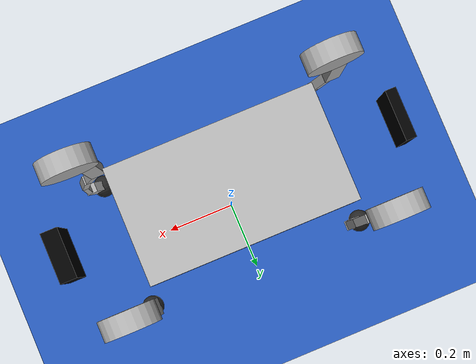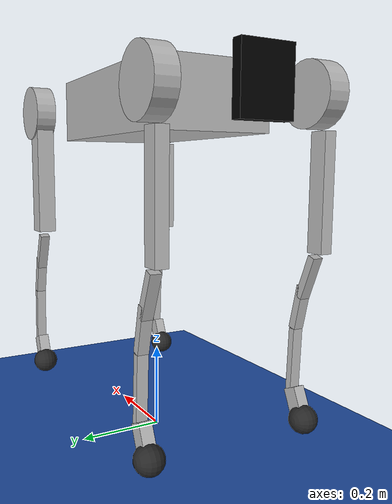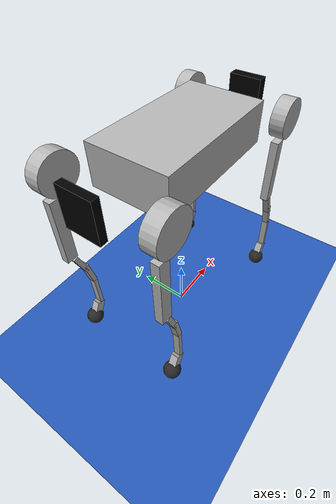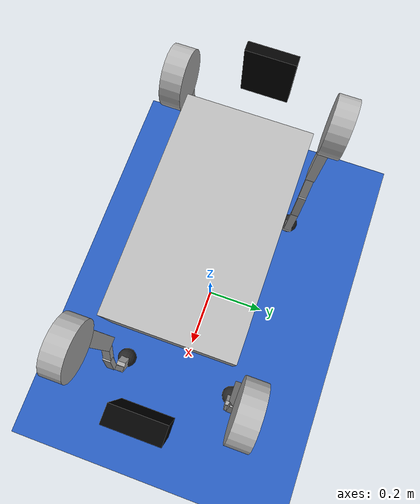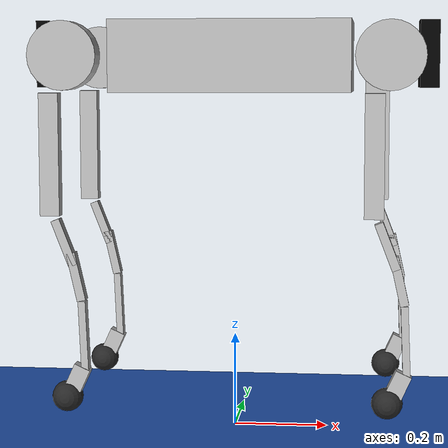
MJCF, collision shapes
<mujoco model="B2_Quadruped">
  <include file="../../object/common.xml"/>

  <size memory="1M"/>

  <visual>
    <headlight diffuse="0.6 0.6 0.6"  ambient="0.3 0.3 0.3" specular="0 0 0"/>
    <global azimuth="-90"/>
  </visual>

  <statistic extent="1" center="0 0 .3"/>

  <worldbody>
    <light pos="0 0 1.5" dir="0 0 -1" diffuse="0.5 0.5 0.5" specular="0.3 0.3 0.3"
      directional="true" castshadow="false"/>
    <geom name="floor" size="0 0 0.1" pos="0 0 0" type="plane" material="blue_grid" friction="1 0.02 0.001"/>
  </worldbody>

  <default>
    <default class="torque">
      <general gainprm="200" ctrllimited="true" ctrlrange="-1 1"/>
    </default>
  </default>

  <include file="B2_Motion.xml" />

  <actuator>
    <general class="torque" name="FR_hip" joint="FR_hip_joint"/>
    <general class="torque" name="FR_thigh" joint="FR_thigh_joint"/>
    <general class="torque" name="FR_calf" joint="FR_calf_joint"/>
    <general class="torque" name="FL_hip" joint="FL_hip_joint"/>
    <general class="torque" name="FL_thigh" joint="FL_thigh_joint"/>
    <general class="torque" name="FL_calf" joint="FL_calf_joint"/>
    <general class="torque" name="RR_hip" joint="RR_hip_joint"/>
    <general class="torque" name="RR_thigh" joint="RR_thigh_joint"/>
    <general class="torque" name="RR_calf" joint="RR_calf_joint"/>
    <general class="torque" name="RL_hip" joint="RL_hip_joint"/>
    <general class="torque" name="RL_thigh" joint="RL_thigh_joint"/>
    <general class="torque" name="RL_calf" joint="RL_calf_joint"/>
  </actuator>

  <sensor>
    <user name="Qpos" dim="12" user="0 0 0 0 0 0 0 0 0 0 0 0" />
    <user name="FootHeight" dim="4" user="0 0 0 0" />
    <user name="Height" dim="1" user="0" />
    <user name="Position" dim="3" user="0 0 0" />
    <user name="Heading" dim="2" />
    <user name="YPR" dim="3" user="0 0 0" />
    <user name="Balance" dim="2"/>
    <user name="Effort" dim="12"/>
    <user name="Force" dim="1"/>
    <framepos      name="trace0" objtype="site" objname="head"/>
    <subtreecom    name="torso_subtreecom" body="trunk"/>
    <subtreelinvel name="torso_subtreelinvel" body="trunk"/>
  </sensor>

  <keyframe>
    <key name="home"
          qpos="0 0 0.465
                1 0 0 0
                0 0.9 -1.8
                0 0.9 -1.8
                0 0.9 -1.8
                0 0.9 -1.8"/>
    <key name="crouch"
         qpos="-0.0501827 0.00107117 0.143925
               1 0 0 0
               0 0 -0.5
               0 0 -0.5
               0 0 -0.5
               0 0 -0.5"/>
  </keyframe>
</mujoco>

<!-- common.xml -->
<mujoco>

  <visual>
    <headlight ambient=".4 .4 .4" diffuse=".8 .8 .8" specular="0.1 0.1 0.1"/>
    <map znear=".01"/>
    <quality shadowsize="2048"/>
    <global elevation="-15"/>
  </visual>

  <asset>
    <texture name="blue_grid" type="2d" builtin="checker" rgb1=".02 .14 .44" rgb2=".27 .55 1" width="300" height="300" mark="edge" markrgb="1 1 1"/>
    <material name="blue_grid" texture="blue_grid" texrepeat="1 1" texuniform="true" reflectance=".2"/>

    <texture name="grey_grid" type="2d" builtin="checker" rgb1=".26 .26 .26" rgb2=".6 .6 .6" width="300" height="300" mark="edge" markrgb="1 1 1"/>
    <material name="grey_grid" texture="blue_grid" texrepeat="1 1" texuniform="true" reflectance=".2"/>
    <texture name="skybox" type="skybox" builtin="gradient" rgb1="1 1 1" rgb2="1 1 1" width="800" height="800"/>

    <material name="self" rgba=".7 .5 .3 1"/>
    <material name="self_default" rgba=".7 .5 .3 1"/>
    <material name="self_highlight" rgba="0 .5 .3 1"/>
    <material name="effector" rgba=".7 .4 .2 1"/>
    <material name="effector_default" rgba=".7 .4 .2 1"/>
    <material name="effector_highlight" rgba="0 .5 .3 1"/>
    <material name="decoration" rgba=".2 .6 .3 1"/>
    <material name="eye" rgba="0 .2 1 1"/>
    <material name="target" rgba=".6 .3 .3 1"/>
    <material name="target_default" rgba=".6 .3 .3 1"/>
    <material name="target_highlight" rgba=".6 .3 .3 .4"/>
    <material name="site" rgba=".5 .5 .5 .3"/>
  </asset>
</mujoco>

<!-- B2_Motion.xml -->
<mujoco model="b2_description">
    <compiler angle="radian" meshdir="assets" autolimits="true"/>
    <option gravity='0 0 -9.806' iterations='50' solver='Newton' timestep='0.002'/>

	<default>
		<default class="b2">
			<geom type="mesh"/>
			<joint damping="1" armature="0.1"/>
			<default class="visual">
				<geom contype="0" conaffinity="0" group="2"/>
			</default>
			<default class="collision">
				<geom group="3" mass="0" density="0"/>
			</default>
			<site size="0.001" rgba="0.5 0.5 0.5 0.3" group="4"/>
		</default>
	</default>

	<asset>
		<mesh name="base_link" file="base_link.obj"/>
		<mesh name="logo_left" file="logo_left.obj"/>
		<mesh name="logo_right" file="logo_right.obj"/>
		<mesh name="unitree_ladar" file="unitree_ladar.obj"/>
		<mesh name="f_dc_link" file="f_dc_link.obj"/>
		<mesh name="r_dc_link" file="r_dc_link.obj"/>
		<mesh name="fake_imu_link" file="fake_imu_link.STL"/>
		<mesh name="fake_head_Link" file="fake_head_Link.STL"/>
		<mesh name="fake_tail_link" file="fake_tail_link.STL"/>
		<mesh name="FL_hip" file="FL_hip.obj"/>
		<mesh name="FL_thigh" file="FL_thigh.obj"/>
		<mesh name="FL_thigh_protect" file="FL_thigh_protect.obj"/>
		<mesh name="FL_calf" file="FL_calf.obj"/>
		<mesh name="FL_foot" file="FL_foot.obj"/>
		<mesh name="FR_hip" file="FR_hip.obj"/>
		<mesh name="FR_thigh" file="FR_thigh.obj"/>
		<mesh name="FR_thigh_protect" file="FR_thigh_protect.obj"/>
		<mesh name="FR_calf" file="FR_calf.obj"/>
		<mesh name="FR_foot" file="FR_foot.obj"/>
		<mesh name="RL_hip" file="RL_hip.obj"/>
		<mesh name="RL_thigh" file="RL_thigh.obj"/>
		<mesh name="RL_thigh_protect" file="RL_thigh_protect.obj"/>
		<mesh name="RL_calf" file="RL_calf.obj"/>
		<mesh name="RL_foot" file="RL_foot.obj"/>
		<mesh name="RR_hip" file="RR_hip.obj"/>
		<mesh name="RR_thigh" file="RR_thigh.obj"/>
		<mesh name="RR_thigh_protect" file="RR_thigh_protect.obj"/>
		<mesh name="RR_calf" file="RR_calf.obj"/>
		<mesh name="RR_foot" file="RR_foot.obj"/>
		<mesh name="f_oc_link" file="f_oc_link.obj"/>
		<mesh name="r_oc_link" file="r_oc_link.obj"/>
	</asset>

    <visual>
        <rgba com="0.502 1.0 0 0.5" contactforce="0.98 0.4 0.4 0.7" contactpoint="1.0 1.0 0.6 0.4"/>
        <scale com="0.2" forcewidth="0.035" contactwidth="0.10" contactheight="0.04"/>
    </visual>

    <worldbody>
        <light name="spotlight" mode="targetbodycom" target="trunk" pos="0 -1 2"/>
        <body name="trunk" pos="0 0 0.8" childclass="b2">
            <camera name="track" mode="trackcom" pos="0 -1.3 1.6" xyaxes="1 0 0 0 0.707 0.707"/>
            <site name="head" pos="0.3 0 0" rgba="1 0 0 1" size="0.02" group="5"/>
            <site name="trunk_site"/>
            <inertial pos="0.0212868 0.0045819 0.0106169" quat="0.00178111 0.675412 -0.000262894 0.737438" mass="35.86" diaginertia="1.73786 1.66448 0.343734"/>
            <joint name="trunk" type="free" />
            <geom type="mesh" contype="0" conaffinity="0" group="1" density="0" rgba="0.7 0.7 0.7 1" mesh="base_link"/>
			<geom size="0.25 0.14 0.075" type="box" rgba="0.7 0.7 0.7 1" class="collision"/>
			<geom type="mesh" contype="0" conaffinity="0" group="1" density="0" rgba="1 1 1 1" mesh="logo_left"/>
			<geom type="mesh" contype="0" conaffinity="0" group="1" density="0" rgba="1 1 1 1" mesh="logo_right"/>
			<geom pos="0.841724 -4.57659e-06 0.130379" quat="0.00244632 3.13845e-06 0.999997 1.29099e-06" type="mesh" contype="0" conaffinity="0" group="1" density="0" rgba="0 0 0 1" mesh="f_dc_link"/>
			<geom pos="-0.378319 0.000200109 -0.379902" quat="-1.30076e-06 -0.708662 5.35065e-07 0.705548" type="mesh" contype="0" conaffinity="0" group="1" density="0" rgba="0 0 0 1" mesh="r_dc_link"/>
			<geom pos="0 -0.02341 0.04927" type="mesh" contype="0" conaffinity="0" group="1" density="0" rgba="0 0 0 1" mesh="fake_imu_link"/>
			<geom type="mesh" contype="0" conaffinity="0" group="1" density="0" rgba="0 0 0 1" mesh="fake_head_Link"/>
			<geom size="0.02 0.06 0.07" pos="0.41 0 0.005" type="box" rgba="0 0 0 1" class="collision"/>
			<geom type="mesh" contype="0" conaffinity="0" group="1" density="0" rgba="0 0 0 1" mesh="fake_tail_link"/>
			<geom size="0.0125 0.06 0.07" pos="-0.405 0 0.005" type="box" rgba="0 0 0 1" class="collision"/>
			<geom pos="0.84158 -0.0134347 -0.0134347" quat="-3.89602e-06 1.29867e-06 0.707107 -0.707107" type="mesh" contype="0" conaffinity="0" group="1" density="0" rgba="0 0 0 1" mesh="f_oc_link"/>
			<geom pos="-0.00451008 0.0252504 -0.0262476" quat="0.707107 -0.707107 -1.29867e-06 -1.29867e-06" type="mesh" contype="0" conaffinity="0" group="1" density="0" rgba="0 0 0 1" mesh="r_oc_link"/>

            <site name="imu" pos="0 0 0"/>

			<body name="FR_hip" pos="0.3285 -0.072 0">
                <site name="FR_hip_site"/>
				<inertial pos="-0.00844158 0.0100194 0.000239503" quat="0.476608 0.477229 0.518954 0.525151" mass="2.9464" diaginertia="0.00485575 0.00370656 0.00277186"/>
				<joint name="FR_hip_joint" pos="0 0 0" axis="1 0 0" range="-0.87 0.87"/>
				<geom type="mesh" contype="0" conaffinity="0" group="1" density="0" rgba="0.7 0.7 0.7 1" mesh="FR_hip"/>
				<geom size="0.07 0.025" pos="0 -0.12 0" quat="0.707107 0.707107 0 0" type="cylinder" rgba="0.7 0.7 0.7 1" class="collision"/>
				<body name="FR_thigh" pos="0 -0.11973 0">
                    <site name="FR_thigh_site"/>
					<inertial pos="-0.00592206 0.0335174 -0.0545473" quat="0.40566 -0.000894103 0.0855942 0.910007" mass="4.8094" diaginertia="0.0640936 0.0634464 0.00699948"/>
					<joint name="FR_thigh_joint" pos="0 0 0" axis="0 1 0" range="-0.94 4.69"/>
					<geom type="mesh" contype="0" conaffinity="0" group="1" density="0" rgba="0.7 0.7 0.7 1" mesh="FR_thigh"/>
					<geom size="0.125 0.014 0.02" pos="-0.03 0 -0.2" quat="0.707388 0 0.706825 0" type="box" rgba="0.7 0.7 0.7 1" class="collision"/>
					<geom type="mesh" contype="0" conaffinity="0" group="1" density="0" rgba="0.65 0.68 0.65 1" mesh="FR_thigh_protect"/>
					<body name="FR_calf" pos="0 8.6986e-05 -0.35">
                        <site name="FR_calf_site"/>
						<inertial pos="0.00792095 0 -0.180895" quat="0.70709 -0.00488772 -0.00488772 0.70709" mass="0.53" diaginertia="0.0169205 0.0167822 0.000404298"/>
						<joint name="FR_calf_joint" pos="0 0 0" axis="0 1 0" range="-2.82 -0.43"/>
						<geom type="mesh" contype="0" conaffinity="0" group="1" density="0" rgba="0.7 0.7 0.7 1" mesh="FR_calf"/>
						<geom size="0.05 0.01225 0.009" pos="-0.002 0 -0.03" quat="0.825336 0 0.564642 0" type="box" rgba="0.7 0.7 0.7 1" class="collision"/>
						<geom size="0.05 0.01225 0.009" pos="0.022 0 -0.1" quat="0.780707 0 0.624897 0" type="box" rgba="0.7 0.7 0.7 1" class="collision"/>
						<geom size="0.075 0.01225 0.0075" pos="0.036 0 -0.225" quat="0.721382 0 0.692537 0" type="box" rgba="0.7 0.7 0.7 1" class="collision"/>
						<geom size="0.025 0.014 0.0175" pos="0.023 0 -0.31" quat="0.540302 0 0.841471 0" type="box" rgba="0.7 0.7 0.7 1" class="collision"/>
						<geom type="mesh" contype="0" conaffinity="0" group="1" density="0" rgba="0.15 0.15 0.15 1" mesh="FR_foot" friction="0.4 0.005 0.0001"/>
						<geom name="FR_foot_collision" size="0.032" pos="0 8.6986e-05 -0.35" quat="0.707388 0.706825 0 0" type="sphere" rgba="0.15 0.15 0.15 1" class="collision" friction="0.4 0.005 0.0001"/>
                        <geom name="FR_foot" size="0.032" pos="0 8.6986e-05 -0.35" quat="0.707388 0.706825 0 0" type="sphere" rgba="0.15 0.15 0.15 1" class="visual"/>
                        <site name="FR_foot_site" size="0.032" pos="0 8.6986e-05 -0.35"/>
					</body>
				</body>
			</body>

			<body name="FL_hip" pos="0.3285 0.072 0">
                <site name="FL_hip_site"/>
				<inertial pos="-0.00348459 -0.00896704 0" quat="0.511347 0.510967 0.488412 0.488763" mass="2.9464" diaginertia="0.00502561 0.00397571 0.00346037"/>
				<joint name="FL_hip_joint" pos="0 0 0" axis="1 0 0" range="-0.87 0.87"/>
				<geom type="mesh" contype="0" conaffinity="0" group="1" density="0" rgba="0.7 0.7 0.7 1" mesh="FL_hip"/>
				<geom size="0.07 0.025" pos="0 0.12 0" quat="0.707107 0.707107 0 0" type="cylinder" rgba="0.7 0.7 0.7 1" class="collision"/>
				<body name="FL_thigh" pos="0 0.11973 0">
                    <site name="FL_thigh_site"/>
					<inertial pos="-0.00592206 -0.0335174 -0.0545473" quat="0.910035 0.0855949 -0.000888135 0.405597" mass="4.8094" diaginertia="0.0640934 0.0634463 0.00699942"/>
					<joint name="FL_thigh_joint" pos="0 0 0" axis="0 1 0" range="-0.94 4.69"/>
					<geom type="mesh" contype="0" conaffinity="0" group="1" density="0" rgba="0.7 0.7 0.7 1" mesh="FL_thigh"/>
					<geom size="0.16 0.02225 0.027" pos="-0.025 0 -0.16" quat="0.707388 0 0.706825 0" type="box" rgba="0.7 0.7 0.7 1" class="collision"/>
					<geom type="mesh" contype="0" conaffinity="0" group="1" density="0" rgba="0.65 0.68 0.65 1" mesh="FL_thigh_protect"/>
					<body name="FL_calf" pos="0 -8.6984e-05 -0.35">
                        <site name="FL_calf_site"/>
						<inertial pos="0.00792095 0 -0.180895" quat="0.70709 -0.00488772 -0.00488772 0.70709" mass="0.53" diaginertia="0.0169205 0.0167822 0.000404298"/>
						<joint name="FL_calf_joint" pos="0 0 0" axis="0 1 0" range="-2.82 -0.43"/>
						<geom type="mesh" contype="0" conaffinity="0" group="1" density="0" rgba="0.7 0.7 0.7 1" mesh="FL_calf"/>
						<geom size="0.05 0.01225 0.009" pos="-0.002 0 -0.03" quat="0.825336 0 0.564642 0" type="box" rgba="0.7 0.7 0.7 1" class="collision"/>
						<geom size="0.05 0.01225 0.009" pos="0.022 0 -0.1" quat="0.780707 0 0.624897 0" type="box" rgba="0.7 0.7 0.7 1" class="collision"/>
						<geom size="0.075 0.01225 0.0075" pos="0.036 0 -0.225" quat="0.721382 0 0.692537 0" type="box" rgba="0.7 0.7 0.7 1" class="collision"/>
						<geom size="0.025 0.014 0.0175" pos="0.023 0 -0.31" quat="0.540302 0 0.841471 0" type="box" rgba="0.7 0.7 0.7 1" class="collision"/>
						<geom pos="0 8.6986e-05 0" type="mesh" contype="0" conaffinity="0" group="1" density="0" rgba="0.15 0.15 0.15 1" mesh="FL_foot" friction="0.4 0.005 0.0001"/>
                        <geom name="FL_foot_collision" size="0.032" pos="0 8.6986e-05 -0.35" quat="0.707388 0.706825 0 0" type="sphere" rgba="0.15 0.15 0.15 1" class="collision" friction="0.4 0.005 0.0001"/>
                        <geom name="FL_foot" size="0.032" pos="0 8.6986e-05 -0.35" quat="0.707388 0.706825 0 0" type="sphere" rgba="0.15 0.15 0.15 1" class="visual"/>
                        <site name="FL_foot_site" size="0.032" pos="0 8.6986e-05 -0.35"/>
					</body>
				</body>
			</body>

			<body name="RR_hip" pos="-0.3285 -0.072 0">
                <site name="RR_hip_site"/>
				<inertial pos="0.00348459 0.00896704 0" quat="0.510967 0.511347 0.488763 0.488412" mass="2.9464" diaginertia="0.00502561 0.00397571 0.00346037"/>
				<joint name="RR_hip_joint" pos="0 0 0" axis="1 0 0" range="-0.87 0.87"/>
				<geom type="mesh" contype="0" conaffinity="0" group="1" density="0" rgba="0.7 0.7 0.7 1" mesh="RR_hip"/>
				<geom size="0.07 0.025" pos="0 -0.12 0" quat="0.707107 0.707107 0 0" type="cylinder" rgba="0.7 0.7 0.7 1" class="collision"/>
				<body name="RR_thigh" pos="0 -0.11973 0">
                    <site name="RR_thigh_site"/>
					<inertial pos="-0.00592206 0.0335174 -0.0545473" quat="0.405597 -0.000888135 0.0855949 0.910035" mass="4.8094" diaginertia="0.0640934 0.0634463 0.00699942"/>
					<joint name="RR_thigh_joint" pos="0 0 0" axis="0 1 0" range="-0.94 4.69"/>
					<geom type="mesh" contype="0" conaffinity="0" group="1" density="0" rgba="0.7 0.7 0.7 1" mesh="RR_thigh"/>
					<geom size="0.125 0.014 0.02" pos="-0.03 0 -0.2" quat="0.707388 0 0.706825 0" type="box" rgba="0.7 0.7 0.7 1" class="collision"/>
					<geom type="mesh" contype="0" conaffinity="0" group="1" density="0" rgba="0.65 0.68 0.65 1" mesh="RR_thigh_protect"/>
					<body name="RR_calf" pos="0 8.6986e-05 -0.35">
                        <site name="RR_calf_site"/>
						<inertial pos="0.00792095 0 -0.180895" quat="0.70709 -0.00488772 -0.00488772 0.70709" mass="0.53" diaginertia="0.0169205 0.0167822 0.000404298"/>
						<joint name="RR_calf_joint" pos="0 0 0" axis="0 1 0" range="-2.82 -0.43"/>
						<geom type="mesh" contype="0" conaffinity="0" group="1" density="0" rgba="0.7 0.7 0.7 1" mesh="RR_calf"/>
						<geom size="0.05 0.01225 0.009" pos="-0.002 0 -0.03" quat="0.825336 0 0.564642 0" type="box" rgba="0.7 0.7 0.7 1" class="collision"/>
						<geom size="0.05 0.01225 0.009" pos="0.022 0 -0.1" quat="0.780707 0 0.624897 0" type="box" rgba="0.7 0.7 0.7 1" class="collision"/>
						<geom size="0.075 0.01225 0.0075" pos="0.036 0 -0.225" quat="0.721382 0 0.692537 0" type="box" rgba="0.7 0.7 0.7 1" class="collision"/>
						<geom size="0.025 0.014 0.0175" pos="0.023 0 -0.31" quat="0.540302 0 0.841471 0" type="box" rgba="0.7 0.7 0.7 1" class="collision"/>
						<geom pos="0 -8.6984e-05 0" type="mesh" contype="0" conaffinity="0" group="1" density="0" rgba="0.15 0.15 0.15 1" mesh="RR_foot" friction="0.4 0.005 0.0001"/>
                        <geom name="RR_foot_collision" size="0.032" pos="0 8.6986e-05 -0.35" quat="0.707388 0.706825 0 0" type="sphere" rgba="0.15 0.15 0.15 1" class="collision" friction="0.4 0.005 0.0001"/>
                        <geom name="RR_foot" size="0.032" pos="0 8.6986e-05 -0.35" quat="0.707388 0.706825 0 0" type="sphere" rgba="0.15 0.15 0.15 1" class="visual"/>
                        <site name="RR_foot_site" size="0.032" pos="0 8.6986e-05 -0.35"/>
					</body>
				</body>
			</body>

			<body name="RL_hip" pos="-0.3285 0.072 0">
                <site name="RL_hip_site"/>
				<inertial pos="0.00844158 -0.0100194 0.000239503" quat="0.477229 0.476608 0.525151 0.518954" mass="2.9464" diaginertia="0.00485575 0.00370656 0.00277186"/>
				<joint name="RL_hip_joint" pos="0 0 0" axis="1 0 0" range="-0.87 0.87"/>
				<geom type="mesh" contype="0" conaffinity="0" group="1" density="0" rgba="0.7 0.7 0.7 1" mesh="RL_hip"/>
				<geom size="0.07 0.025" pos="0 0.12 0" quat="0.707107 0.707107 0 0" type="cylinder" rgba="0.7 0.7 0.7 1" class="collision"/>
				<body name="RL_thigh" pos="0 0.11973 0">
                    <site name="RL_thigh_site"/>
					<inertial pos="-0.00592206 -0.0335174 -0.0545473" quat="0.910007 0.0855942 -0.000894103 0.40566" mass="4.8094" diaginertia="0.0640936 0.0634464 0.00699948"/>
					<joint name="RL_thigh_joint" pos="0 0 0" axis="0 1 0" range="-0.94 4.69"/>
					<geom type="mesh" contype="0" conaffinity="0" group="1" density="0" rgba="0.7 0.7 0.7 1" mesh="RL_thigh"/>
					<geom size="0.125 0.014 0.02" pos="-0.03 0 -0.2" quat="0.707388 0 0.706825 0" type="box" rgba="0.7 0.7 0.7 1" class="collision"/>
					<geom type="mesh" contype="0" conaffinity="0" group="1" density="0" rgba="0.65 0.68 0.65 1" mesh="RL_thigh_protect"/>
					<body name="RL_calf" pos="0 -8.6984e-05 -0.35">
                        <site name="RL_calf_site"/>
						<inertial pos="0.00792095 0 -0.180895" quat="0.70709 -0.00488772 -0.00488772 0.70709" mass="0.53" diaginertia="0.0169205 0.0167822 0.000404298"/>
						<joint name="RL_calf_joint" pos="0 0 0" axis="0 1 0" range="-2.82 -0.43"/>
						<geom type="mesh" contype="0" conaffinity="0" group="1" density="0" rgba="0.7 0.7 0.7 1" mesh="RL_calf"/>
						<geom size="0.05 0.01225 0.009" pos="-0.002 0 -0.03" quat="0.825336 0 0.564642 0" type="box" rgba="0.7 0.7 0.7 1" class="collision"/>
						<geom size="0.05 0.01225 0.009" pos="0.022 0 -0.1" quat="0.780707 0 0.624897 0" type="box" rgba="0.7 0.7 0.7 1" class="collision"/>
						<geom size="0.075 0.01225 0.0075" pos="0.036 0 -0.225" quat="0.721382 0 0.692537 0" type="box" rgba="0.7 0.7 0.7 1" class="collision"/>
						<geom size="0.025 0.014 0.0175" pos="0.023 0 -0.31" quat="0.540302 0 0.841471 0" type="box" rgba="0.7 0.7 0.7 1" class="collision"/>
						<geom pos="0 8.6986e-05 0" type="mesh" contype="0" conaffinity="0" group="1" density="0" rgba="0.15 0.15 0.15 1" mesh="RL_foot" friction="0.4 0.005 0.0001"/>
                        <geom name="RL_foot_collision" size="0.032" pos="0 8.6986e-05 -0.35" quat="0.707388 0.706825 0 0" type="sphere" rgba="0.15 0.15 0.15 1" class="collision" friction="0.4 0.005 0.0001"/>
                        <geom name="RL_foot" size="0.032" pos="0 8.6986e-05 -0.35" quat="0.707388 0.706825 0 0" type="sphere" rgba="0.15 0.15 0.15 1" class="visual"/>
                        <site name="RL_foot_site" size="0.032" pos="0 8.6986e-05 -0.35"/>
					</body>
				</body>
			</body>
        </body>
    </worldbody>

</mujoco>
